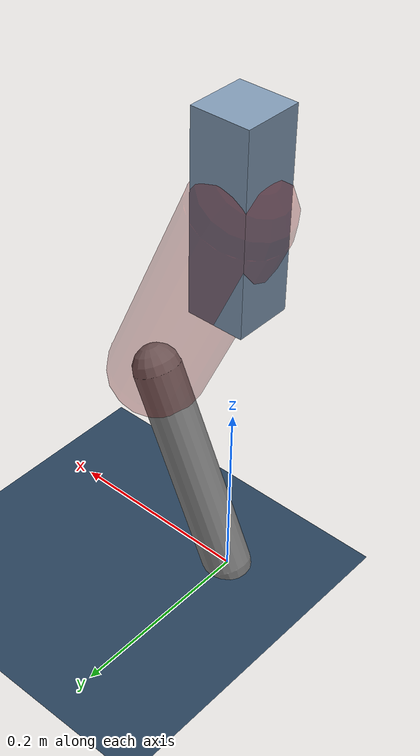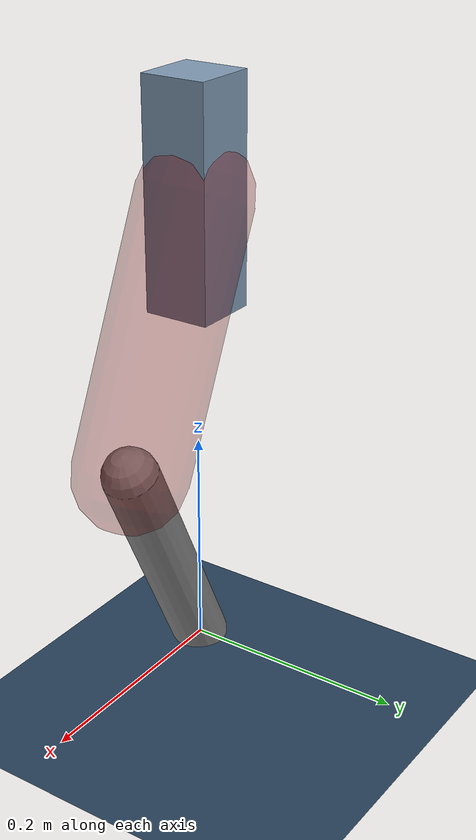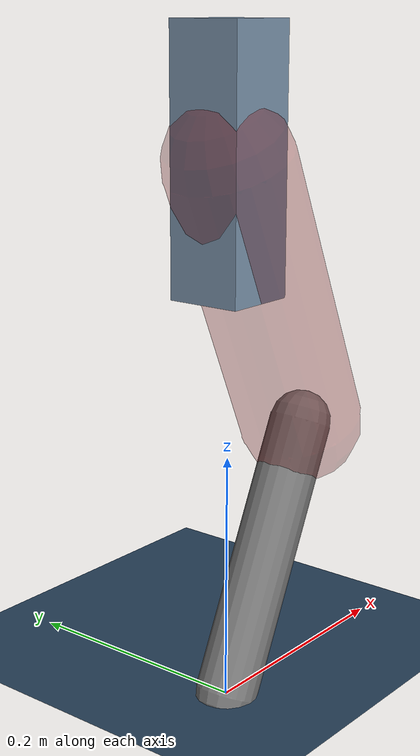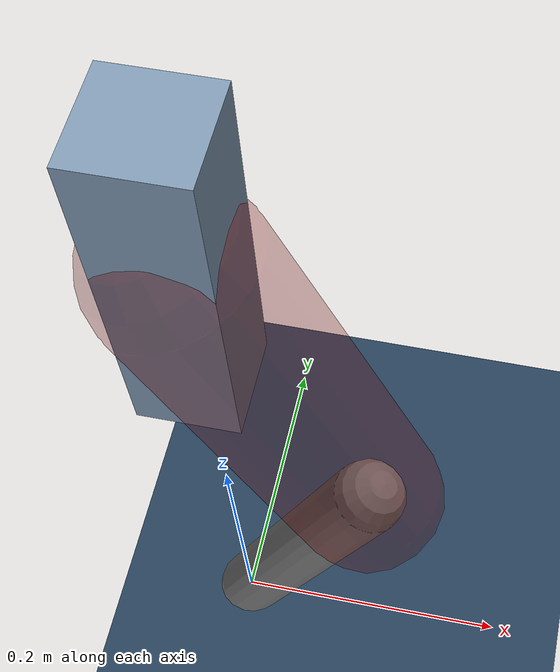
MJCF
<mujoco model="Hopper2D">
	<compiler inertiafromgeom="true" angle="radian" />
	<option timestep="0.001" integrator="implicit" cone="elliptic" solver="Newton" tolerance="1e-10" />

	<default>
		<geom contype="1" conaffinity="1" condim="3" friction="2 0.005 0.0001" solref="0.005 1" />
		<joint limited="true" damping="0.1" />
	</default>

	<asset>
		<texture name="skybox" type="skybox" builtin="gradient" rgb1=".4 .6 .8" rgb2="0 0 0" width="800" height="800" />
		<texture name="grid" type="2d" builtin="checker" rgb1=".1 .2 .3" rgb2=".2 .3 .4" width="300" height="300" mark="edge" markrgb=".2 .3 .4" />
		<material name="ground" texture="grid" texrepeat="1 1" texuniform="true" reflectance="0.1" />
		<material name="leg" rgba="0.5 0.6 0.7 1" />
	</asset>

	<worldbody>

		<geom name="floor" type="plane" size="5 5 0.25" material="ground" />

		<light directional="false" diffuse="0.8 0.8 0.8" specular="0.3 0.3 0.3" pos="0 0 2" dir="0 0 -1" />
		<light mode="targetbodycom" target="base" directional="false" diffuse="0.8 0.8 0.8" specular="0.3 0.3 0.3" pos="0 0 2" dir="0 0 -1" />

		<camera name="fixed" pos="0 -2 1" xyaxes="1 0 0 0 0 1" />
		<camera name="tracking" mode="trackcom" pos="0 -3 1" />

		<body name="root" pos="0 0 0.4243377077739085">
			<joint name="slide_x" type="slide" axis="1 0 0" range="-100 100" />
			<joint name="slide_z" type="slide" axis="0 0 1" range="0 10" />

			<body name="base" pos="0 0 0">
				<geom name="torso" type="box" size="0.03 0.03 0.1" mass="2.457" material="leg" />

				<body name="link1" pos="0 0 0" euler="0 1.1516813201609213 0">
					<joint type="hinge" axis="0 -1 0" pos="0 0 0" name="hinge1" limited="true" range="-3.14 3.14" stiffness="0" damping="0.1" />
					<geom name="thigh" type="capsule" fromto="0 0 0 0.23766683563967905 0 0" size="0.05" rgba="0.5 0 0 0.3" mass="0.8246337726631655" />

					<body name="link2" pos="0.23766683563967905 0 0" euler="0 0.8557681078924779 0">
						<joint type="hinge" axis="0 -1 0" pos="0 0 0" name="hinge2" limited="true" range="-3.14 3.14" stiffness="0" damping="0.1" />
						<geom name="shank" type="capsule" fromto="0 0 0 0.2286994402881875 0 0" size="0.025" mass="0.42492949625936877" />

					</body>
				</body>
			</body>
		</body>
	</worldbody>

	<actuator>
		<motor name="torque1" joint="hinge1" ctrlrange="-84.20266727832224 84.20266727832224" ctrllimited="true" gear="1" />
		<motor name="torque2" joint="hinge2" ctrlrange="-36.70161790688801 36.70161790688801" ctrllimited="true" gear="1" />
	</actuator>
</mujoco>
